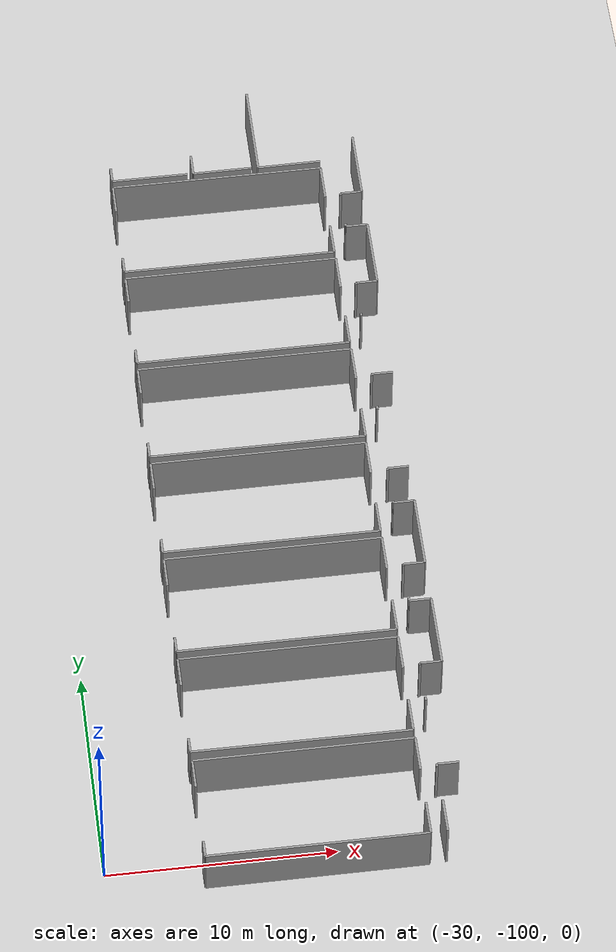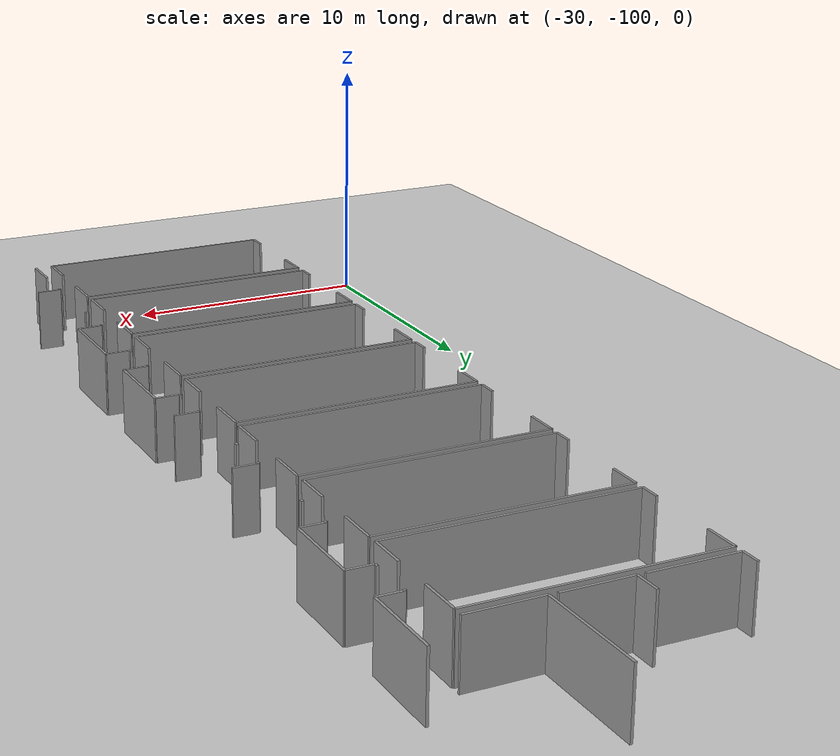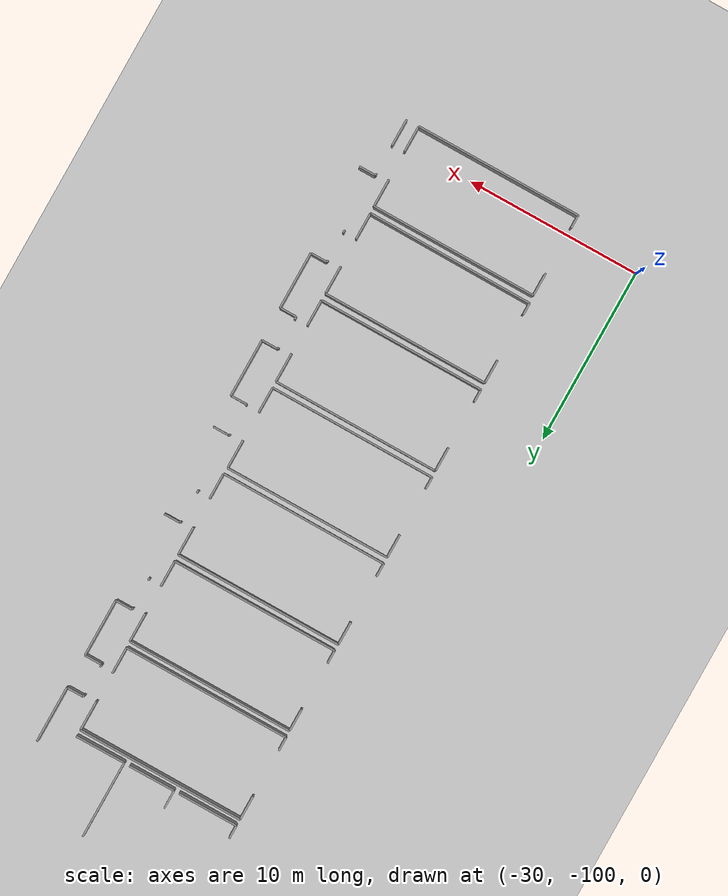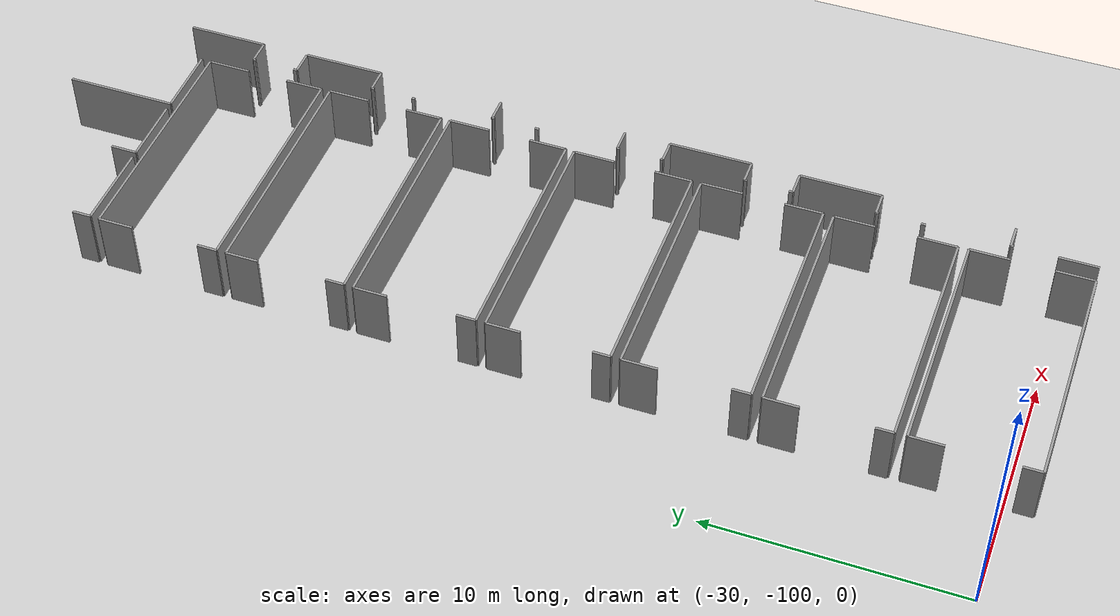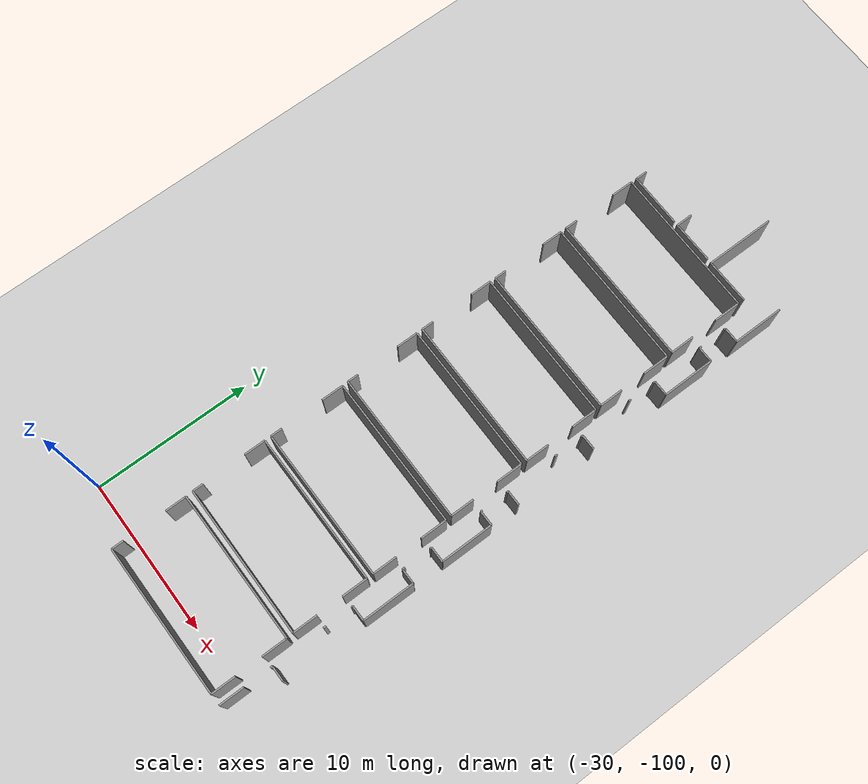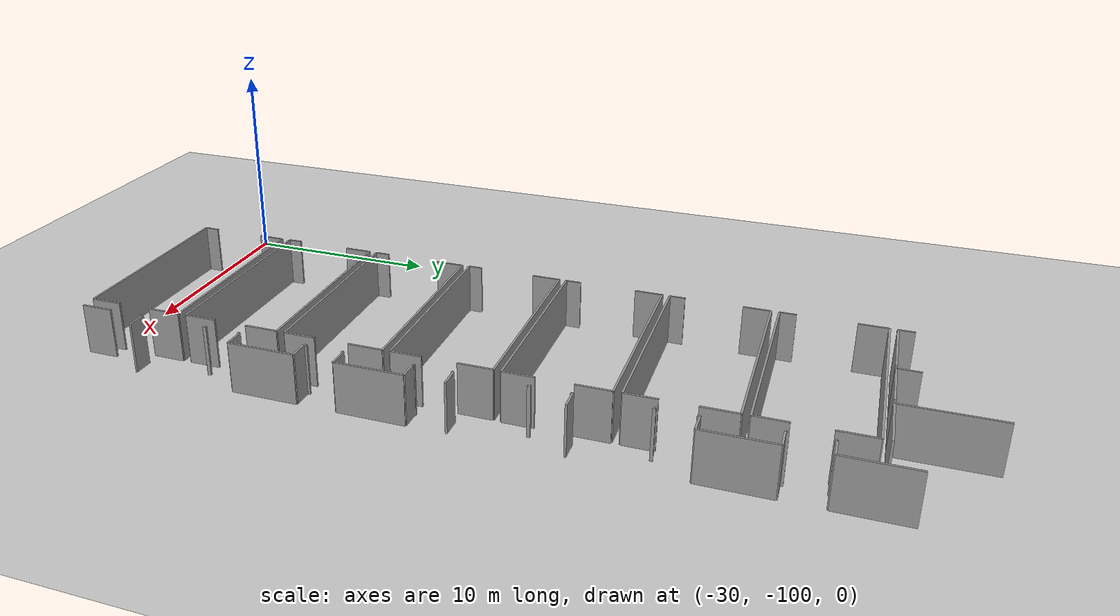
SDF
<sdf version="1.6">
 <world name="default">
  <model name="ground_plane">
   <static>1</static>
   <link name="link">
    <collision name="collision">
     <geometry><plane><normal>0 0 1</normal><size>100 100</size></plane></geometry>
     <surface><friction><ode><mu>100</mu><mu2>50</mu2></ode></friction></surface>
    </collision>
    <visual name="visual">
     <cast_shadows>0</cast_shadows>
     <geometry><plane><normal>0 0 1</normal><size>100 100</size></plane></geometry>
     <material>
      <script><uri>file://media/materials/scripts/gazebo.material</uri><name>Gazebo/Grey</name></script>
     </material>
    </visual>
   </link>
  </model>
  <model name="0510045926_A-40">
   <static>1</static>
   <link name="Wall_1555">
    <collision name="Wall_1555_Collision">
     <geometry><box><size>1.05620530133 0.1 2.5</size></box></geometry>
     <pose>0.528102650667 0 1.25 0 0 0</pose>
    </collision>
    <visual name="Wall_1555_Visual">
     <pose>0.528102650667 0 1.25 0 0 0</pose>
     <geometry><box><size>1.05620530133 0.1 2.5</size></box></geometry>
     <material>
      <script><uri>file://media/materials/scripts/gazebo.material</uri><name>Gazebo/Grey</name></script>
      <ambient>1 1 1 1</ambient>
     </material>
    </visual>
    <pose>111.850415337 -165.554710851 0 0 0 1.57079632679</pose>
   </link>
   <link name="Wall_1559">
    <collision name="Wall_1559_Collision">
     <geometry><box><size>2.68687564854 0.1 2.5</size></box></geometry>
     <pose>1.34343782427 0 1.25 0 0 0</pose>
    </collision>
    <visual name="Wall_1559_Visual">
     <pose>1.34343782427 0 1.25 0 0 0</pose>
     <geometry><box><size>2.68687564854 0.1 2.5</size></box></geometry>
     <material>
      <script><uri>file://media/materials/scripts/gazebo.material</uri><name>Gazebo/Grey</name></script>
      <ambient>1 1 1 1</ambient>
     </material>
    </visual>
    <pose>114.537253384 -165.54049612 0 0 0 -3.13630219752</pose>
   </link>
   <link name="Wall_1560">
    <collision name="Wall_1560_Collision">
     <geometry><box><size>0.752873089102 0.1 2.5</size></box></geometry>
     <pose>0.376436544551 0 1.25 0 0 0</pose>
    </collision>
    <visual name="Wall_1560_Visual">
     <pose>0.376436544551 0 1.25 0 0 0</pose>
     <geometry><box><size>0.752873089102 0.1 2.5</size></box></geometry>
     <material>
      <script><uri>file://media/materials/scripts/gazebo.material</uri><name>Gazebo/Grey</name></script>
      <ambient>1 1 1 1</ambient>
     </material>
    </visual>
    <pose>108.110671836 -165.551157168 0 0 0 1.57079632679</pose>
   </link>
   <link name="Wall_1567">
    <collision name="Wall_1567_Collision">
     <geometry><box><size>3.45671813088 0.1 2.5</size></box></geometry>
     <pose>1.72835906544 0 1.25 0 0 0</pose>
    </collision>
    <visual name="Wall_1567_Visual">
     <pose>1.72835906544 0 1.25 0 0 0</pose>
     <geometry><box><size>3.45671813088 0.1 2.5</size></box></geometry>
     <material>
      <script><uri>file://media/materials/scripts/gazebo.material</uri><name>Gazebo/Grey</name></script>
      <ambient>1 1 1 1</ambient>
     </material>
    </visual>
    <pose>111.567389883 -165.550395665 0 0 0 -3.14137235693</pose>
   </link>
   <link name="Wall_1575">
    <collision name="Wall_1575_Collision">
     <geometry><box><size>4.42382744332 0.1 2.5</size></box></geometry>
     <pose>2.21191372166 0 1.25 0 0 0</pose>
    </collision>
    <visual name="Wall_1575_Visual">
     <pose>2.21191372166 0 1.25 0 0 0</pose>
     <geometry><box><size>4.42382744332 0.1 2.5</size></box></geometry>
     <material>
      <script><uri>file://media/materials/scripts/gazebo.material</uri><name>Gazebo/Grey</name></script>
      <ambient>1 1 1 1</ambient>
     </material>
    </visual>
    <pose>114.8487083 -165.556487692 0 0 0 1.57079632679</pose>
   </link>
   <link name="Wall_1586">
    <collision name="Wall_1586_Collision">
     <geometry><box><size>2.87349520242 0.1 2.5</size></box></geometry>
     <pose>1.43674760121 0 1.25 0 0 0</pose>
    </collision>
    <visual name="Wall_1586_Visual">
     <pose>1.43674760121 0 1.25 0 0 0</pose>
     <geometry><box><size>2.87349520242 0.1 2.5</size></box></geometry>
     <material>
      <script><uri>file://media/materials/scripts/gazebo.material</uri><name>Gazebo/Grey</name></script>
      <ambient>1 1 1 1</ambient>
     </material>
    </visual>
    <pose>117.722114695 -165.533896423 0 0 0 -3.13373062477</pose>
   </link>
   <link name="Wall_1587">
    <collision name="Wall_1587_Collision">
     <geometry><box><size>0.790948262186 0.1 2.5</size></box></geometry>
     <pose>0.395474131093 0 1.25 0 0 0</pose>
    </collision>
    <visual name="Wall_1587_Visual">
     <pose>0.395474131093 0 1.25 0 0 0</pose>
     <geometry><box><size>0.790948262186 0.1 2.5</size></box></geometry>
     <material>
      <script><uri>file://media/materials/scripts/gazebo.material</uri><name>Gazebo/Grey</name></script>
      <ambient>1 1 1 1</ambient>
     </material>
    </visual>
    <pose>108.099756953 -170.854267275 0 0 0 1.57079632679</pose>
   </link>
   <link name="Wall_1588">
    <collision name="Wall_1588_Collision">
     <geometry><box><size>1.39558201075 0.1 2.5</size></box></geometry>
     <pose>0.697791005375 0 1.25 0 0 0</pose>
    </collision>
    <visual name="Wall_1588_Visual">
     <pose>0.697791005375 0 1.25 0 0 0</pose>
     <geometry><box><size>1.39558201075 0.1 2.5</size></box></geometry>
     <material>
      <script><uri>file://media/materials/scripts/gazebo.material</uri><name>Gazebo/Grey</name></script>
      <ambient>1 1 1 1</ambient>
     </material>
    </visual>
    <pose>108.099756953 -167.316322192 0 0 0 1.57079632679</pose>
   </link>
   <link name="Wall_1589">
    <collision name="Wall_1589_Collision">
     <geometry><box><size>9.59088226522 0.1 2.5</size></box></geometry>
     <pose>4.79544113261 0 1.25 0 0 0</pose>
    </collision>
    <visual name="Wall_1589_Visual">
     <pose>4.79544113261 0 1.25 0 0 0</pose>
     <geometry><box><size>9.59088226522 0.1 2.5</size></box></geometry>
     <material>
      <script><uri>file://media/materials/scripts/gazebo.material</uri><name>Gazebo/Grey</name></script>
      <ambient>1 1 1 1</ambient>
     </material>
    </visual>
    <pose>108.099756953 -165.920740181 0 0 0 0.0</pose>
   </link>
   <link name="Wall_1590">
    <collision name="Wall_1590_Collision">
     <geometry><box><size>1.73648172709 0.1 2.5</size></box></geometry>
     <pose>0.868240863545 0 1.25 0 0 0</pose>
    </collision>
    <visual name="Wall_1590_Visual">
     <pose>0.868240863545 0 1.25 0 0 0</pose>
     <geometry><box><size>1.73648172709 0.1 2.5</size></box></geometry>
     <material>
      <script><uri>file://media/materials/scripts/gazebo.material</uri><name>Gazebo/Grey</name></script>
      <ambient>1 1 1 1</ambient>
     </material>
    </visual>
    <pose>117.690639219 -165.920740181 0 0 0 -1.57079632679</pose>
   </link>
   <link name="Wall_1591">
    <collision name="Wall_1591_Collision">
     <geometry><box><size>1.5217377509 0.1 2.5</size></box></geometry>
     <pose>0.76086887545 0 1.25 0 0 0</pose>
    </collision>
    <visual name="Wall_1591_Visual">
     <pose>0.76086887545 0 1.25 0 0 0</pose>
     <geometry><box><size>1.5217377509 0.1 2.5</size></box></geometry>
     <material>
      <script><uri>file://media/materials/scripts/gazebo.material</uri><name>Gazebo/Grey</name></script>
      <ambient>1 1 1 1</ambient>
     </material>
    </visual>
    <pose>117.690639219 -169.341667566 0 0 0 -1.57079632679</pose>
   </link>
   <link name="Wall_1592">
    <collision name="Wall_1592_Collision">
     <geometry><box><size>9.59088661851 0.1 2.5</size></box></geometry>
     <pose>4.79544330925 0 1.25 0 0 0</pose>
    </collision>
    <visual name="Wall_1592_Visual">
     <pose>4.79544330925 0 1.25 0 0 0</pose>
     <geometry><box><size>9.59088661851 0.1 2.5</size></box></geometry>
     <material>
      <script><uri>file://media/materials/scripts/gazebo.material</uri><name>Gazebo/Grey</name></script>
      <ambient>1 1 1 1</ambient>
     </material>
    </visual>
    <pose>117.690639219 -170.863405317 0 0 0 3.14063986963</pose>
   </link>
   <link name="Wall_1593">
    <collision name="Wall_1593_Collision">
     <geometry><box><size>0.750080909743 0.1 2.5</size></box></geometry>
     <pose>0.375040454871 0 1.25 0 0 0</pose>
    </collision>
    <visual name="Wall_1593_Visual">
     <pose>0.375040454871 0 1.25 0 0 0</pose>
     <geometry><box><size>0.750080909743 0.1 2.5</size></box></geometry>
     <material>
      <script><uri>file://media/materials/scripts/gazebo.material</uri><name>Gazebo/Grey</name></script>
      <ambient>1 1 1 1</ambient>
     </material>
    </visual>
    <pose>108.109402664 -176.063204787 0 0 0 1.57079632679</pose>
   </link>
   <link name="Wall_1594">
    <collision name="Wall_1594_Collision">
     <geometry><box><size>1.31486264381 0.1 2.5</size></box></geometry>
     <pose>0.657431321907 0 1.25 0 0 0</pose>
    </collision>
    <visual name="Wall_1594_Visual">
     <pose>0.657431321907 0 1.25 0 0 0</pose>
     <geometry><box><size>1.31486264381 0.1 2.5</size></box></geometry>
     <material>
      <script><uri>file://media/materials/scripts/gazebo.material</uri><name>Gazebo/Grey</name></script>
      <ambient>1 1 1 1</ambient>
     </material>
    </visual>
    <pose>108.109402664 -172.551404657 0 0 0 1.57079632679</pose>
   </link>
   <link name="Wall_1595">
    <collision name="Wall_1595_Collision">
     <geometry><box><size>9.59976647227 0.1 2.5</size></box></geometry>
     <pose>4.79988323614 0 1.25 0 0 0</pose>
    </collision>
    <visual name="Wall_1595_Visual">
     <pose>4.79988323614 0 1.25 0 0 0</pose>
     <geometry><box><size>9.59976647227 0.1 2.5</size></box></geometry>
     <material>
      <script><uri>file://media/materials/scripts/gazebo.material</uri><name>Gazebo/Grey</name></script>
      <ambient>1 1 1 1</ambient>
     </material>
    </visual>
    <pose>108.109402664 -171.236542013 0 0 0 0.0</pose>
   </link>
   <link name="Wall_1596">
    <collision name="Wall_1596_Collision">
     <geometry><box><size>1.67708445708 0.1 2.5</size></box></geometry>
     <pose>0.83854222854 0 1.25 0 0 0</pose>
    </collision>
    <visual name="Wall_1596_Visual">
     <pose>0.83854222854 0 1.25 0 0 0</pose>
     <geometry><box><size>1.67708445708 0.1 2.5</size></box></geometry>
     <material>
      <script><uri>file://media/materials/scripts/gazebo.material</uri><name>Gazebo/Grey</name></script>
      <ambient>1 1 1 1</ambient>
     </material>
    </visual>
    <pose>117.709169136 -171.236542013 0 0 0 -1.57079632679</pose>
   </link>
   <link name="Wall_1597">
    <collision name="Wall_1597_Collision">
     <geometry><box><size>1.50320783333 0.1 2.5</size></box></geometry>
     <pose>0.751603916666 0 1.25 0 0 0</pose>
    </collision>
    <visual name="Wall_1597_Visual">
     <pose>0.751603916666 0 1.25 0 0 0</pose>
     <geometry><box><size>1.50320783333 0.1 2.5</size></box></geometry>
     <material>
      <script><uri>file://media/materials/scripts/gazebo.material</uri><name>Gazebo/Grey</name></script>
      <ambient>1 1 1 1</ambient>
     </material>
    </visual>
    <pose>117.709169136 -174.549335906 0 0 0 -1.57079632679</pose>
   </link>
   <link name="Wall_1598">
    <collision name="Wall_1598_Collision">
     <geometry><box><size>9.5997723921 0.1 2.5</size></box></geometry>
     <pose>4.79988619605 0 1.25 0 0 0</pose>
    </collision>
    <visual name="Wall_1598_Visual">
     <pose>4.79988619605 0 1.25 0 0 0</pose>
     <geometry><box><size>9.5997723921 0.1 2.5</size></box></geometry>
     <material>
      <script><uri>file://media/materials/scripts/gazebo.material</uri><name>Gazebo/Grey</name></script>
      <ambient>1 1 1 1</ambient>
     </material>
    </visual>
    <pose>117.709169136 -176.052543739 0 0 0 -3.14048210115</pose>
   </link>
   <link name="Wall_1599">
    <collision name="Wall_1599_Collision">
     <geometry><box><size>0.764803310002 0.1 2.5</size></box></geometry>
     <pose>0.382401655001 0 1.25 0 0 0</pose>
    </collision>
    <visual name="Wall_1599_Visual">
     <pose>0.382401655001 0 1.25 0 0 0</pose>
     <geometry><box><size>0.764803310002 0.1 2.5</size></box></geometry>
     <material>
      <script><uri>file://media/materials/scripts/gazebo.material</uri><name>Gazebo/Grey</name></script>
      <ambient>1 1 1 1</ambient>
     </material>
    </visual>
    <pose>108.09671094 -181.290926052 0 0 0 1.57079632679</pose>
   </link>
   <link name="Wall_1600">
    <collision name="Wall_1600_Collision">
     <geometry><box><size>1.34278443741 0.1 2.5</size></box></geometry>
     <pose>0.671392218704 0 1.25 0 0 0</pose>
    </collision>
    <visual name="Wall_1600_Visual">
     <pose>0.671392218704 0 1.25 0 0 0</pose>
     <geometry><box><size>1.34278443741 0.1 2.5</size></box></geometry>
     <material>
      <script><uri>file://media/materials/scripts/gazebo.material</uri><name>Gazebo/Grey</name></script>
      <ambient>1 1 1 1</ambient>
     </material>
    </visual>
    <pose>108.09671094 -177.7745569 0 0 0 1.57079632679</pose>
   </link>
   <link name="Wall_1601">
    <collision name="Wall_1601_Collision">
     <geometry><box><size>9.62794210035 0.1 2.5</size></box></geometry>
     <pose>4.81397105018 0 1.25 0 0 0</pose>
    </collision>
    <visual name="Wall_1601_Visual">
     <pose>4.81397105018 0 1.25 0 0 0</pose>
     <geometry><box><size>9.62794210035 0.1 2.5</size></box></geometry>
     <material>
      <script><uri>file://media/materials/scripts/gazebo.material</uri><name>Gazebo/Grey</name></script>
      <ambient>1 1 1 1</ambient>
     </material>
    </visual>
    <pose>108.09671094 -176.431772463 0 0 0 0.0</pose>
   </link>
   <link name="Wall_1602">
    <collision name="Wall_1602_Collision">
     <geometry><box><size>1.65652386361 0.1 2.5</size></box></geometry>
     <pose>0.828261931807 0 1.25 0 0 0</pose>
    </collision>
    <visual name="Wall_1602_Visual">
     <pose>0.828261931807 0 1.25 0 0 0</pose>
     <geometry><box><size>1.65652386361 0.1 2.5</size></box></geometry>
     <material>
      <script><uri>file://media/materials/scripts/gazebo.material</uri><name>Gazebo/Grey</name></script>
      <ambient>1 1 1 1</ambient>
     </material>
    </visual>
    <pose>117.72465304 -176.431772463 0 0 0 -1.57079632679</pose>
   </link>
   <link name="Wall_1603">
    <collision name="Wall_1603_Collision">
     <geometry><box><size>1.50853835756 0.1 2.5</size></box></geometry>
     <pose>0.754269178782 0 1.25 0 0 0</pose>
    </collision>
    <visual name="Wall_1603_Visual">
     <pose>0.754269178782 0 1.25 0 0 0</pose>
     <geometry><box><size>1.50853835756 0.1 2.5</size></box></geometry>
     <material>
      <script><uri>file://media/materials/scripts/gazebo.material</uri><name>Gazebo/Grey</name></script>
      <ambient>1 1 1 1</ambient>
     </material>
    </visual>
    <pose>117.72465304 -179.797110094 0 0 0 -1.57079632679</pose>
   </link>
   <link name="Wall_1604">
    <collision name="Wall_1604_Collision">
     <geometry><box><size>9.6279533566 0.1 2.5</size></box></geometry>
     <pose>4.8139766783 0 1.25 0 0 0</pose>
    </collision>
    <visual name="Wall_1604_Visual">
     <pose>4.8139766783 0 1.25 0 0 0</pose>
     <geometry><box><size>9.6279533566 0.1 2.5</size></box></geometry>
     <material>
      <script><uri>file://media/materials/scripts/gazebo.material</uri><name>Gazebo/Grey</name></script>
      <ambient>1 1 1 1</ambient>
     </material>
    </visual>
    <pose>117.72465304 -181.305648452 0 0 0 3.14006352217</pose>
   </link>
   <link name="Wall_1605">
    <collision name="Wall_1605_Collision">
     <geometry><box><size>0.692968150118 0.1 2.5</size></box></geometry>
     <pose>0.346484075059 0 1.25 0 0 0</pose>
    </collision>
    <visual name="Wall_1605_Visual">
     <pose>0.346484075059 0 1.25 0 0 0</pose>
     <geometry><box><size>0.692968150118 0.1 2.5</size></box></geometry>
     <material>
      <script><uri>file://media/materials/scripts/gazebo.material</uri><name>Gazebo/Grey</name></script>
      <ambient>1 1 1 1</ambient>
     </material>
    </visual>
    <pose>108.097980112 -186.483364322 0 0 0 1.57079632679</pose>
   </link>
   <link name="Wall_1606">
    <collision name="Wall_1606_Collision">
     <geometry><box><size>1.36562954126 0.1 2.5</size></box></geometry>
     <pose>0.682814770629 0 1.25 0 0 0</pose>
    </collision>
    <visual name="Wall_1606_Visual">
     <pose>0.682814770629 0 1.25 0 0 0</pose>
     <geometry><box><size>1.36562954126 0.1 2.5</size></box></geometry>
     <material>
      <script><uri>file://media/materials/scripts/gazebo.material</uri><name>Gazebo/Grey</name></script>
      <ambient>1 1 1 1</ambient>
     </material>
    </visual>
    <pose>108.097980112 -183.027915448 0 0 0 1.57079632679</pose>
   </link>
   <link name="Wall_1607">
    <collision name="Wall_1607_Collision">
     <geometry><box><size>9.59367444458 0.1 2.5</size></box></geometry>
     <pose>4.79683722229 0 1.25 0 0 0</pose>
    </collision>
    <visual name="Wall_1607_Visual">
     <pose>4.79683722229 0 1.25 0 0 0</pose>
     <geometry><box><size>9.59367444458 0.1 2.5</size></box></geometry>
     <material>
      <script><uri>file://media/materials/scripts/gazebo.material</uri><name>Gazebo/Grey</name></script>
      <ambient>1 1 1 1</ambient>
     </material>
    </visual>
    <pose>108.097980112 -181.662285906 0 0 0 0.0</pose>
   </link>
   <link name="Wall_1608">
    <collision name="Wall_1608_Collision">
     <geometry><box><size>1.66464656721 0.1 2.5</size></box></geometry>
     <pose>0.832323283603 0 1.25 0 0 0</pose>
    </collision>
    <visual name="Wall_1608_Visual">
     <pose>0.832323283603 0 1.25 0 0 0</pose>
     <geometry><box><size>1.66464656721 0.1 2.5</size></box></geometry>
     <material>
      <script><uri>file://media/materials/scripts/gazebo.material</uri><name>Gazebo/Grey</name></script>
      <ambient>1 1 1 1</ambient>
     </material>
    </visual>
    <pose>117.691654557 -181.662285906 0 0 0 -1.57079632679</pose>
   </link>
   <link name="Wall_1609">
    <collision name="Wall_1609_Collision">
     <geometry><box><size>1.50270016436 0.1 2.5</size></box></geometry>
     <pose>0.751350082179 0 1.25 0 0 0</pose>
    </collision>
    <visual name="Wall_1609_Visual">
     <pose>0.751350082179 0 1.25 0 0 0</pose>
     <geometry><box><size>1.50270016436 0.1 2.5</size></box></geometry>
     <material>
      <script><uri>file://media/materials/scripts/gazebo.material</uri><name>Gazebo/Grey</name></script>
      <ambient>1 1 1 1</ambient>
     </material>
    </visual>
    <pose>117.691654557 -184.98701002 0 0 0 -1.57079632679</pose>
   </link>
   <link name="Wall_1610">
    <collision name="Wall_1610_Collision">
     <geometry><box><size>9.59367654336 0.1 2.5</size></box></geometry>
     <pose>4.79683827168 0 1.25 0 0 0</pose>
    </collision>
    <visual name="Wall_1610_Visual">
     <pose>4.79683827168 0 1.25 0 0 0</pose>
     <geometry><box><size>9.59367654336 0.1 2.5</size></box></geometry>
     <material>
      <script><uri>file://media/materials/scripts/gazebo.material</uri><name>Gazebo/Grey</name></script>
      <ambient>1 1 1 1</ambient>
     </material>
    </visual>
    <pose>117.691654557 -186.489710184 0 0 0 3.14093119053</pose>
   </link>
   <link name="Wall_1611">
    <collision name="Wall_1611_Collision">
     <geometry><box><size>0.731297157688 0.1 2.5</size></box></geometry>
     <pose>0.365648578844 0 1.25 0 0 0</pose>
    </collision>
    <visual name="Wall_1611_Visual">
     <pose>0.365648578844 0 1.25 0 0 0</pose>
     <geometry><box><size>0.731297157688 0.1 2.5</size></box></geometry>
     <material>
      <script><uri>file://media/materials/scripts/gazebo.material</uri><name>Gazebo/Grey</name></script>
      <ambient>1 1 1 1</ambient>
     </material>
    </visual>
    <pose>108.110671836 -191.740022718 0 0 0 1.57079632679</pose>
   </link>
   <link name="Wall_1612">
    <collision name="Wall_1612_Collision">
     <geometry><box><size>1.39583584524 0.1 2.5</size></box></geometry>
     <pose>0.697917922619 0 1.25 0 0 0</pose>
    </collision>
    <visual name="Wall_1612_Visual">
     <pose>0.697917922619 0 1.25 0 0 0</pose>
     <geometry><box><size>1.39583584524 0.1 2.5</size></box></geometry>
     <material>
      <script><uri>file://media/materials/scripts/gazebo.material</uri><name>Gazebo/Grey</name></script>
      <ambient>1 1 1 1</ambient>
     </material>
    </visual>
    <pose>108.110671836 -188.252590698 0 0 0 1.57079632679</pose>
   </link>
   <link name="Wall_1613">
    <collision name="Wall_1613_Collision">
     <geometry><box><size>9.59138993419 0.1 2.5</size></box></geometry>
     <pose>4.7956949671 0 1.25 0 0 0</pose>
    </collision>
    <visual name="Wall_1613_Visual">
     <pose>4.7956949671 0 1.25 0 0 0</pose>
     <geometry><box><size>9.59138993419 0.1 2.5</size></box></geometry>
     <material>
      <script><uri>file://media/materials/scripts/gazebo.material</uri><name>Gazebo/Grey</name></script>
      <ambient>1 1 1 1</ambient>
     </material>
    </visual>
    <pose>108.110671836 -186.856754853 0 0 0 0.0</pose>
   </link>
   <link name="Wall_1614">
    <collision name="Wall_1614_Collision">
     <geometry><box><size>1.67708445708 0.1 2.5</size></box></geometry>
     <pose>0.83854222854 0 1.25 0 0 0</pose>
    </collision>
    <visual name="Wall_1614_Visual">
     <pose>0.83854222854 0 1.25 0 0 0</pose>
     <geometry><box><size>1.67708445708 0.1 2.5</size></box></geometry>
     <material>
      <script><uri>file://media/materials/scripts/gazebo.material</uri><name>Gazebo/Grey</name></script>
      <ambient>1 1 1 1</ambient>
     </material>
    </visual>
    <pose>117.702061771 -186.856754853 0 0 0 -1.57079632679</pose>
   </link>
   <link name="Wall_1615">
    <collision name="Wall_1615_Collision">
     <geometry><box><size>1.53062195795 0.1 2.5</size></box></geometry>
     <pose>0.765310978976 0 1.25 0 0 0</pose>
    </collision>
    <visual name="Wall_1615_Visual">
     <pose>0.765310978976 0 1.25 0 0 0</pose>
     <geometry><box><size>1.53062195795 0.1 2.5</size></box></geometry>
     <material>
      <script><uri>file://media/materials/scripts/gazebo.material</uri><name>Gazebo/Grey</name></script>
      <ambient>1 1 1 1</ambient>
     </material>
    </visual>
    <pose>117.702061771 -190.20940076 0 0 0 -1.57079632679</pose>
   </link>
   <link name="Wall_1616">
    <collision name="Wall_1616_Collision">
     <geometry><box><size>9.59138993419 0.1 2.5</size></box></geometry>
     <pose>4.7956949671 0 1.25 0 0 0</pose>
    </collision>
    <visual name="Wall_1616_Visual">
     <pose>4.7956949671 0 1.25 0 0 0</pose>
     <geometry><box><size>9.59138993419 0.1 2.5</size></box></geometry>
     <material>
      <script><uri>file://media/materials/scripts/gazebo.material</uri><name>Gazebo/Grey</name></script>
      <ambient>1 1 1 1</ambient>
     </material>
    </visual>
    <pose>117.702061771 -191.740022718 0 0 0 3.14159265359</pose>
   </link>
   <link name="Wall_1617">
    <collision name="Wall_1617_Collision">
     <geometry><box><size>0.692968150118 0.1 2.5</size></box></geometry>
     <pose>0.346484075059 0 1.25 0 0 0</pose>
    </collision>
    <visual name="Wall_1617_Visual">
     <pose>0.346484075059 0 1.25 0 0 0</pose>
     <geometry><box><size>0.692968150118 0.1 2.5</size></box></geometry>
     <material>
      <script><uri>file://media/materials/scripts/gazebo.material</uri><name>Gazebo/Grey</name></script>
      <ambient>1 1 1 1</ambient>
     </material>
    </visual>
    <pose>108.110671836 -196.928653472 0 0 0 1.57079632679</pose>
   </link>
   <link name="Wall_1618">
    <collision name="Wall_1618_Collision">
     <geometry><box><size>1.35344548587 0.1 2.5</size></box></geometry>
     <pose>0.676722742935 0 1.25 0 0 0</pose>
    </collision>
    <visual name="Wall_1618_Visual">
     <pose>0.676722742935 0 1.25 0 0 0</pose>
     <geometry><box><size>1.35344548587 0.1 2.5</size></box></geometry>
     <material>
      <script><uri>file://media/materials/scripts/gazebo.material</uri><name>Gazebo/Grey</name></script>
      <ambient>1 1 1 1</ambient>
     </material>
    </visual>
    <pose>108.110671836 -193.498080377 0 0 0 1.57079632679</pose>
   </link>
   <link name="Wall_1619">
    <collision name="Wall_1619_Collision">
     <geometry><box><size>9.58275956163 0.1 2.5</size></box></geometry>
     <pose>4.79137978081 0 1.25 0 0 0</pose>
    </collision>
    <visual name="Wall_1619_Visual">
     <pose>4.79137978081 0 1.25 0 0 0</pose>
     <geometry><box><size>9.58275956163 0.1 2.5</size></box></geometry>
     <material>
      <script><uri>file://media/materials/scripts/gazebo.material</uri><name>Gazebo/Grey</name></script>
      <ambient>1 1 1 1</ambient>
     </material>
    </visual>
    <pose>108.110671836 -192.144634891 0 0 0 0.0</pose>
   </link>
   <link name="Wall_1620">
    <collision name="Wall_1620_Collision">
     <geometry><box><size>1.62454071822 0.1 2.5</size></box></geometry>
     <pose>0.812270359112 0 1.25 0 0 0</pose>
    </collision>
    <visual name="Wall_1620_Visual">
     <pose>0.812270359112 0 1.25 0 0 0</pose>
     <geometry><box><size>1.62454071822 0.1 2.5</size></box></geometry>
     <material>
      <script><uri>file://media/materials/scripts/gazebo.material</uri><name>Gazebo/Grey</name></script>
      <ambient>1 1 1 1</ambient>
     </material>
    </visual>
    <pose>117.693431398 -192.144634891 0 0 0 -1.57079632679</pose>
   </link>
   <link name="Wall_1621">
    <collision name="Wall_1621_Collision">
     <geometry><box><size>1.5575284136 0.1 2.5</size></box></geometry>
     <pose>0.778764206799 0 1.25 0 0 0</pose>
    </collision>
    <visual name="Wall_1621_Visual">
     <pose>0.778764206799 0 1.25 0 0 0</pose>
     <geometry><box><size>1.5575284136 0.1 2.5</size></box></geometry>
     <material>
      <script><uri>file://media/materials/scripts/gazebo.material</uri><name>Gazebo/Grey</name></script>
      <ambient>1 1 1 1</ambient>
     </material>
    </visual>
    <pose>117.693431398 -195.409200231 0 0 0 -1.57079632679</pose>
   </link>
   <link name="Wall_1622">
    <collision name="Wall_1622_Collision">
     <geometry><box><size>9.58283520336 0.1 2.5</size></box></geometry>
     <pose>4.79141760168 0 1.25 0 0 0</pose>
    </collision>
    <visual name="Wall_1622_Visual">
     <pose>4.79141760168 0 1.25 0 0 0</pose>
     <geometry><box><size>9.58283520336 0.1 2.5</size></box></geometry>
     <material>
      <script><uri>file://media/materials/scripts/gazebo.material</uri><name>Gazebo/Grey</name></script>
      <ambient>1 1 1 1</ambient>
     </material>
    </visual>
    <pose>117.693431398 -196.966728645 0 0 0 3.13761937507</pose>
   </link>
   <link name="Wall_1623">
    <collision name="Wall_1623_Collision">
     <geometry><box><size>0.758457447821 0.1 2.5</size></box></geometry>
     <pose>0.379228723911 0 1.25 0 0 0</pose>
    </collision>
    <visual name="Wall_1623_Visual">
     <pose>0.379228723911 0 1.25 0 0 0</pose>
     <geometry><box><size>0.758457447821 0.1 2.5</size></box></geometry>
     <material>
      <script><uri>file://media/materials/scripts/gazebo.material</uri><name>Gazebo/Grey</name></script>
      <ambient>1 1 1 1</ambient>
     </material>
    </visual>
    <pose>108.143416485 -202.188104047 0 0 0 1.57079632679</pose>
   </link>
   <link name="Wall_1624">
    <collision name="Wall_1624_Collision">
     <geometry><box><size>1.33390023035 0.1 2.5</size></box></geometry>
     <pose>0.666950115177 0 1.25 0 0 0</pose>
    </collision>
    <visual name="Wall_1624_Visual">
     <pose>0.666950115177 0 1.25 0 0 0</pose>
     <geometry><box><size>1.33390023035 0.1 2.5</size></box></geometry>
     <material>
      <script><uri>file://media/materials/scripts/gazebo.material</uri><name>Gazebo/Grey</name></script>
      <ambient>1 1 1 1</ambient>
     </material>
    </visual>
    <pose>108.143416485 -198.712602248 0 0 0 1.57079632679</pose>
   </link>
   <link name="Wall_1625">
    <collision name="Wall_1625_Collision">
     <geometry><box><size>9.57514452701 0.1 2.5</size></box></geometry>
     <pose>4.78757226351 0 1.25 0 0 0</pose>
    </collision>
    <visual name="Wall_1625_Visual">
     <pose>4.78757226351 0 1.25 0 0 0</pose>
     <geometry><box><size>9.57514452701 0.1 2.5</size></box></geometry>
     <material>
      <script><uri>file://media/materials/scripts/gazebo.material</uri><name>Gazebo/Grey</name></script>
      <ambient>1 1 1 1</ambient>
     </material>
    </visual>
    <pose>108.143416485 -197.378702017 0 0 0 0.0</pose>
   </link>
   <link name="Wall_1626">
    <collision name="Wall_1626_Collision">
     <geometry><box><size>1.59763426258 0.1 2.5</size></box></geometry>
     <pose>0.79881713129 0 1.25 0 0 0</pose>
    </collision>
    <visual name="Wall_1626_Visual">
     <pose>0.79881713129 0 1.25 0 0 0</pose>
     <geometry><box><size>1.59763426258 0.1 2.5</size></box></geometry>
     <material>
      <script><uri>file://media/materials/scripts/gazebo.material</uri><name>Gazebo/Grey</name></script>
      <ambient>1 1 1 1</ambient>
     </material>
    </visual>
    <pose>117.718561012 -197.378702017 0 0 0 -1.57079632679</pose>
   </link>
   <link name="Wall_1627">
    <collision name="Wall_1627_Collision">
     <geometry><box><size>1.51919940603 0.1 2.5</size></box></geometry>
     <pose>0.759599703014 0 1.25 0 0 0</pose>
    </collision>
    <visual name="Wall_1627_Visual">
     <pose>0.759599703014 0 1.25 0 0 0</pose>
     <geometry><box><size>1.51919940603 0.1 2.5</size></box></geometry>
     <material>
      <script><uri>file://media/materials/scripts/gazebo.material</uri><name>Gazebo/Grey</name></script>
      <ambient>1 1 1 1</ambient>
     </material>
    </visual>
    <pose>117.718561012 -200.656466751 0 0 0 -1.57079632679</pose>
   </link>
   <link name="Wall_1628">
    <collision name="Wall_1628_Collision">
     <geometry><box><size>9.57515260527 0.1 2.5</size></box></geometry>
     <pose>4.78757630264 0 1.25 0 0 0</pose>
    </collision>
    <visual name="Wall_1628_Visual">
     <pose>4.78757630264 0 1.25 0 0 0</pose>
     <geometry><box><size>9.57515260527 0.1 2.5</size></box></geometry>
     <material>
      <script><uri>file://media/materials/scripts/gazebo.material</uri><name>Gazebo/Grey</name></script>
      <ambient>1 1 1 1</ambient>
     </material>
    </visual>
    <pose>117.718561012 -202.175666157 0 0 0 -3.1402936776</pose>
   </link>
   <link name="Wall_1677">
    <collision name="Wall_1677_Collision">
     <geometry><box><size>1.55499006873 0.1 2.5</size></box></geometry>
     <pose>0.777495034363 0 1.25 0 0 0</pose>
    </collision>
    <visual name="Wall_1677_Visual">
     <pose>0.777495034363 0 1.25 0 0 0</pose>
     <geometry><box><size>1.55499006873 0.1 2.5</size></box></geometry>
     <material>
      <script><uri>file://media/materials/scripts/gazebo.material</uri><name>Gazebo/Grey</name></script>
      <ambient>1 1 1 1</ambient>
     </material>
    </visual>
    <pose>118.443258473 -202.172366309 0 0 0 1.57079632679</pose>
   </link>
   <link name="Wall_1678">
    <collision name="Wall_1678_Collision">
     <geometry><box><size>0.114987022712 0.1 2.5</size></box></geometry>
     <pose>0.0574935113559 0 1.25 0 0 0</pose>
    </collision>
    <visual name="Wall_1678_Visual">
     <pose>0.0574935113559 0 1.25 0 0 0</pose>
     <geometry><box><size>0.114987022712 0.1 2.5</size></box></geometry>
     <material>
      <script><uri>file://media/materials/scripts/gazebo.material</uri><name>Gazebo/Grey</name></script>
      <ambient>1 1 1 1</ambient>
     </material>
    </visual>
    <pose>118.443258473 -198.932169079 0 0 0 1.57079632679</pose>
   </link>
   <link name="Wall_1679">
    <collision name="Wall_1679_Collision">
     <geometry><box><size>0.958479023753 0.1 2.5</size></box></geometry>
     <pose>0.479239511876 0 1.25 0 0 0</pose>
    </collision>
    <visual name="Wall_1679_Visual">
     <pose>0.479239511876 0 1.25 0 0 0</pose>
     <geometry><box><size>0.958479023753 0.1 2.5</size></box></geometry>
     <material>
      <script><uri>file://media/materials/scripts/gazebo.material</uri><name>Gazebo/Grey</name></script>
      <ambient>1 1 1 1</ambient>
     </material>
    </visual>
    <pose>118.443258473 -198.817182056 0 0 0 0.0</pose>
   </link>
   <link name="Wall_1682">
    <collision name="Wall_1682_Collision">
     <geometry><box><size>0.177684141056 0.1 2.5</size></box></geometry>
     <pose>0.0888420705279 0 1.25 0 0 0</pose>
    </collision>
    <visual name="Wall_1682_Visual">
     <pose>0.0888420705279 0 1.25 0 0 0</pose>
     <geometry><box><size>0.177684141056 0.1 2.5</size></box></geometry>
     <material>
      <script><uri>file://media/materials/scripts/gazebo.material</uri><name>Gazebo/Grey</name></script>
      <ambient>1 1 1 1</ambient>
     </material>
    </visual>
    <pose>118.441989301 -195.541701833 0 0 0 1.57079632679</pose>
   </link>
   <link name="Wall_1683">
    <collision name="Wall_1683_Collision">
     <geometry><box><size>0.107118153608 0.1 2.5</size></box></geometry>
     <pose>0.053559076804 0 1.25 0 0 0</pose>
    </collision>
    <visual name="Wall_1683_Visual">
     <pose>0.053559076804 0 1.25 0 0 0</pose>
     <geometry><box><size>0.107118153608 0.1 2.5</size></box></geometry>
     <material>
      <script><uri>file://media/materials/scripts/gazebo.material</uri><name>Gazebo/Grey</name></script>
      <ambient>1 1 1 1</ambient>
     </material>
    </visual>
    <pose>118.441989301 -193.723231567 0 0 0 1.57079632679</pose>
   </link>
   <link name="Wall_1684">
    <collision name="Wall_1684_Collision">
     <geometry><box><size>0.957209851316 0.1 2.5</size></box></geometry>
     <pose>0.478604925658 0 1.25 0 0 0</pose>
    </collision>
    <visual name="Wall_1684_Visual">
     <pose>0.478604925658 0 1.25 0 0 0</pose>
     <geometry><box><size>0.957209851316 0.1 2.5</size></box></geometry>
     <material>
      <script><uri>file://media/materials/scripts/gazebo.material</uri><name>Gazebo/Grey</name></script>
      <ambient>1 1 1 1</ambient>
     </material>
    </visual>
    <pose>118.441989301 -193.616113413 0 0 0 0.0</pose>
   </link>
   <link name="Wall_1685">
    <collision name="Wall_1685_Collision">
     <geometry><box><size>3.28436443017 0.1 2.5</size></box></geometry>
     <pose>1.64218221509 0 1.25 0 0 0</pose>
    </collision>
    <visual name="Wall_1685_Visual">
     <pose>1.64218221509 0 1.25 0 0 0</pose>
     <geometry><box><size>3.28436443017 0.1 2.5</size></box></geometry>
     <material>
      <script><uri>file://media/materials/scripts/gazebo.material</uri><name>Gazebo/Grey</name></script>
      <ambient>1 1 1 1</ambient>
     </material>
    </visual>
    <pose>119.399199152 -193.616113413 0 0 0 1.57079632679</pose>
   </link>
   <link name="Wall_1686">
    <collision name="Wall_1686_Collision">
     <geometry><box><size>0.960002030676 0.1 2.5</size></box></geometry>
     <pose>0.480001015338 0 1.25 0 0 0</pose>
    </collision>
    <visual name="Wall_1686_Visual">
     <pose>0.480001015338 0 1.25 0 0 0</pose>
     <geometry><box><size>0.960002030676 0.1 2.5</size></box></geometry>
     <material>
      <script><uri>file://media/materials/scripts/gazebo.material</uri><name>Gazebo/Grey</name></script>
      <ambient>1 1 1 1</ambient>
     </material>
    </visual>
    <pose>119.399199152 -190.331748983 0 0 0 3.14159265359</pose>
   </link>
   <link name="Wall_1687">
    <collision name="Wall_1687_Collision">
     <geometry><box><size>0.164992416695 0.1 2.5</size></box></geometry>
     <pose>0.0824962083474 0 1.25 0 0 0</pose>
    </collision>
    <visual name="Wall_1687_Visual">
     <pose>0.0824962083474 0 1.25 0 0 0</pose>
     <geometry><box><size>0.164992416695 0.1 2.5</size></box></geometry>
     <material>
      <script><uri>file://media/materials/scripts/gazebo.material</uri><name>Gazebo/Grey</name></script>
      <ambient>1 1 1 1</ambient>
     </material>
    </visual>
    <pose>118.439197122 -190.331748983 0 0 0 1.57079632679</pose>
   </link>
   <link name="Wall_1688">
    <collision name="Wall_1688_Collision">
     <geometry><box><size>0.103056801812 0.1 2.5</size></box></geometry>
     <pose>0.0515284009062 0 1.25 0 0 0</pose>
    </collision>
    <visual name="Wall_1688_Visual">
     <pose>0.0515284009062 0 1.25 0 0 0</pose>
     <geometry><box><size>0.103056801812 0.1 2.5</size></box></geometry>
     <material>
      <script><uri>file://media/materials/scripts/gazebo.material</uri><name>Gazebo/Grey</name></script>
      <ambient>1 1 1 1</ambient>
     </material>
    </visual>
    <pose>118.439197122 -188.487133764 0 0 0 1.57079632679</pose>
   </link>
   <link name="Wall_1689">
    <collision name="Wall_1689_Collision">
     <geometry><box><size>0.957717520291 0.1 2.5</size></box></geometry>
     <pose>0.478858760145 0 1.25 0 0 0</pose>
    </collision>
    <visual name="Wall_1689_Visual">
     <pose>0.478858760145 0 1.25 0 0 0</pose>
     <geometry><box><size>0.957717520291 0.1 2.5</size></box></geometry>
     <material>
      <script><uri>file://media/materials/scripts/gazebo.material</uri><name>Gazebo/Grey</name></script>
      <ambient>1 1 1 1</ambient>
     </material>
    </visual>
    <pose>118.439197122 -188.384076963 0 0 0 0.0</pose>
   </link>
   <link name="Wall_1690">
    <collision name="Wall_1690_Collision">
     <geometry><box><size>3.32218576877 0.1 2.5</size></box></geometry>
     <pose>1.66109288438 0 1.25 0 0 0</pose>
    </collision>
    <visual name="Wall_1690_Visual">
     <pose>1.66109288438 0 1.25 0 0 0</pose>
     <geometry><box><size>3.32218576877 0.1 2.5</size></box></geometry>
     <material>
      <script><uri>file://media/materials/scripts/gazebo.material</uri><name>Gazebo/Grey</name></script>
      <ambient>1 1 1 1</ambient>
     </material>
    </visual>
    <pose>119.396914642 -188.384076963 0 0 0 1.57079632679</pose>
   </link>
   <link name="Wall_1691">
    <collision name="Wall_1691_Collision">
     <geometry><box><size>0.936141588877 0.1 2.5</size></box></geometry>
     <pose>0.468070794438 0 1.25 0 0 0</pose>
    </collision>
    <visual name="Wall_1691_Visual">
     <pose>0.468070794438 0 1.25 0 0 0</pose>
     <geometry><box><size>0.936141588877 0.1 2.5</size></box></geometry>
     <material>
      <script><uri>file://media/materials/scripts/gazebo.material</uri><name>Gazebo/Grey</name></script>
      <ambient>1 1 1 1</ambient>
     </material>
    </visual>
    <pose>119.396914642 -185.061891194 0 0 0 3.14159265359</pose>
   </link>
   <link name="Wall_1692">
    <collision name="Wall_1692_Collision">
     <geometry><box><size>0.0982339465552 0.1 2.5</size></box></geometry>
     <pose>0.0491169732776 0 1.25 0 0 0</pose>
    </collision>
    <visual name="Wall_1692_Visual">
     <pose>0.0491169732776 0 1.25 0 0 0</pose>
     <geometry><box><size>0.0982339465552 0.1 2.5</size></box></geometry>
     <material>
      <script><uri>file://media/materials/scripts/gazebo.material</uri><name>Gazebo/Grey</name></script>
      <ambient>1 1 1 1</ambient>
     </material>
    </visual>
    <pose>118.460773053 -185.061891194 0 0 0 1.57079632679</pose>
   </link>
   <link name="Wall_1693">
    <collision name="Wall_1693_Collision">
     <geometry><box><size>0.0967109396318 0.1 2.5</size></box></geometry>
     <pose>0.0483554698159 0 1.25 0 0 0</pose>
    </collision>
    <visual name="Wall_1693_Visual">
     <pose>0.0483554698159 0 1.25 0 0 0</pose>
     <geometry><box><size>0.0967109396318 0.1 2.5</size></box></geometry>
     <material>
      <script><uri>file://media/materials/scripts/gazebo.material</uri><name>Gazebo/Grey</name></script>
      <ambient>1 1 1 1</ambient>
     </material>
    </visual>
    <pose>118.460773053 -183.283780611 0 0 0 1.57079632679</pose>
   </link>
   <link name="Wall_1694">
    <collision name="Wall_1694_Collision">
     <geometry><box><size>0.944264292468 0.1 2.5</size></box></geometry>
     <pose>0.472132146234 0 1.25 0 0 0</pose>
    </collision>
    <visual name="Wall_1694_Visual">
     <pose>0.472132146234 0 1.25 0 0 0</pose>
     <geometry><box><size>0.944264292468 0.1 2.5</size></box></geometry>
     <material>
      <script><uri>file://media/materials/scripts/gazebo.material</uri><name>Gazebo/Grey</name></script>
      <ambient>1 1 1 1</ambient>
     </material>
    </visual>
    <pose>118.460773053 -183.187069671 0 0 0 0.0</pose>
   </link>
   <link name="Wall_1697">
    <collision name="Wall_1697_Collision">
     <geometry><box><size>0.167784596054 0.1 2.5</size></box></geometry>
     <pose>0.0838922980271 0 1.25 0 0 0</pose>
    </collision>
    <visual name="Wall_1697_Visual">
     <pose>0.0838922980271 0 1.25 0 0 0</pose>
     <geometry><box><size>0.167784596054 0.1 2.5</size></box></geometry>
     <material>
      <script><uri>file://media/materials/scripts/gazebo.material</uri><name>Gazebo/Grey</name></script>
      <ambient>1 1 1 1</ambient>
     </material>
    </visual>
    <pose>118.44757366 -179.910827945 0 0 0 1.57079632679</pose>
   </link>
   <link name="Wall_1698">
    <collision name="Wall_1698_Collision">
     <geometry><box><size>0.0934110912979 0.1 2.5</size></box></geometry>
     <pose>0.046705545649 0 1.25 0 0 0</pose>
    </collision>
    <visual name="Wall_1698_Visual">
     <pose>0.046705545649 0 1.25 0 0 0</pose>
     <geometry><box><size>0.0934110912979 0.1 2.5</size></box></geometry>
     <material>
      <script><uri>file://media/materials/scripts/gazebo.material</uri><name>Gazebo/Grey</name></script>
      <ambient>1 1 1 1</ambient>
     </material>
    </visual>
    <pose>118.44757366 -178.042606119 0 0 0 1.57079632679</pose>
   </link>
   <link name="Wall_1699">
    <collision name="Wall_1699_Collision">
     <geometry><box><size>0.958225189265 0.1 2.5</size></box></geometry>
     <pose>0.479112594633 0 1.25 0 0 0</pose>
    </collision>
    <visual name="Wall_1699_Visual">
     <pose>0.479112594633 0 1.25 0 0 0</pose>
     <geometry><box><size>0.958225189265 0.1 2.5</size></box></geometry>
     <material>
      <script><uri>file://media/materials/scripts/gazebo.material</uri><name>Gazebo/Grey</name></script>
      <ambient>1 1 1 1</ambient>
     </material>
    </visual>
    <pose>118.44757366 -177.949195027 0 0 0 0.0</pose>
   </link>
   <link name="Wall_1702">
    <collision name="Wall_1702_Collision">
     <geometry><box><size>0.142401147332 0.1 2.5</size></box></geometry>
     <pose>0.0712005736659 0 1.25 0 0 0</pose>
    </collision>
    <visual name="Wall_1702_Visual">
     <pose>0.0712005736659 0 1.25 0 0 0</pose>
     <geometry><box><size>0.142401147332 0.1 2.5</size></box></geometry>
     <material>
      <script><uri>file://media/materials/scripts/gazebo.material</uri><name>Gazebo/Grey</name></script>
      <ambient>1 1 1 1</ambient>
     </material>
    </visual>
    <pose>118.433105094 -174.639954817 0 0 0 1.57079632679</pose>
   </link>
   <link name="Wall_1703">
    <collision name="Wall_1703_Collision">
     <geometry><box><size>0.107118153608 0.1 2.5</size></box></geometry>
     <pose>0.053559076804 0 1.25 0 0 0</pose>
    </collision>
    <visual name="Wall_1703_Visual">
     <pose>0.053559076804 0 1.25 0 0 0</pose>
     <geometry><box><size>0.107118153608 0.1 2.5</size></box></geometry>
     <material>
      <script><uri>file://media/materials/scripts/gazebo.material</uri><name>Gazebo/Grey</name></script>
      <ambient>1 1 1 1</ambient>
     </material>
    </visual>
    <pose>118.433105094 -172.856767545 0 0 0 1.57079632679</pose>
   </link>
   <link name="Wall_1704">
    <collision name="Wall_1704_Collision">
     <geometry><box><size>0.96787089978 0.1 2.5</size></box></geometry>
     <pose>0.48393544989 0 1.25 0 0 0</pose>
    </collision>
    <visual name="Wall_1704_Visual">
     <pose>0.48393544989 0 1.25 0 0 0</pose>
     <geometry><box><size>0.96787089978 0.1 2.5</size></box></geometry>
     <material>
      <script><uri>file://media/materials/scripts/gazebo.material</uri><name>Gazebo/Grey</name></script>
      <ambient>1 1 1 1</ambient>
     </material>
    </visual>
    <pose>118.433105094 -172.749649391 0 0 0 0.0</pose>
   </link>
   <link name="Wall_1705">
    <collision name="Wall_1705_Collision">
     <geometry><box><size>3.28842578197 0.1 2.5</size></box></geometry>
     <pose>1.64421289098 0 1.25 0 0 0</pose>
    </collision>
    <visual name="Wall_1705_Visual">
     <pose>1.64421289098 0 1.25 0 0 0</pose>
     <geometry><box><size>3.28842578197 0.1 2.5</size></box></geometry>
     <material>
      <script><uri>file://media/materials/scripts/gazebo.material</uri><name>Gazebo/Grey</name></script>
      <ambient>1 1 1 1</ambient>
     </material>
    </visual>
    <pose>119.400975994 -172.749649391 0 0 0 1.57079632679</pose>
   </link>
   <link name="Wall_1706">
    <collision name="Wall_1706_Collision">
     <geometry><box><size>0.991985176066 0.1 2.5</size></box></geometry>
     <pose>0.495992588033 0 1.25 0 0 0</pose>
    </collision>
    <visual name="Wall_1706_Visual">
     <pose>0.495992588033 0 1.25 0 0 0</pose>
     <geometry><box><size>0.991985176066 0.1 2.5</size></box></geometry>
     <material>
      <script><uri>file://media/materials/scripts/gazebo.material</uri><name>Gazebo/Grey</name></script>
      <ambient>1 1 1 1</ambient>
     </material>
    </visual>
    <pose>119.400975994 -169.461223609 0 0 0 3.14159265359</pose>
   </link>
   <link name="Wall_1707">
    <collision name="Wall_1707_Collision">
     <geometry><box><size>0.155854375155 0.1 2.5</size></box></geometry>
     <pose>0.0779271875773 0 1.25 0 0 0</pose>
    </collision>
    <visual name="Wall_1707_Visual">
     <pose>0.0779271875773 0 1.25 0 0 0</pose>
     <geometry><box><size>0.155854375155 0.1 2.5</size></box></geometry>
     <material>
      <script><uri>file://media/materials/scripts/gazebo.material</uri><name>Gazebo/Grey</name></script>
      <ambient>1 1 1 1</ambient>
     </material>
    </visual>
    <pose>118.408990818 -169.461223609 0 0 0 1.57079632679</pose>
   </link>
   <link name="Wall_1708">
    <collision name="Wall_1708_Collision">
     <geometry><box><size>0.0934110912979 0.1 2.5</size></box></geometry>
     <pose>0.046705545649 0 1.25 0 0 0</pose>
    </collision>
    <visual name="Wall_1708_Visual">
     <pose>0.046705545649 0 1.25 0 0 0</pose>
     <geometry><box><size>0.0934110912979 0.1 2.5</size></box></geometry>
     <material>
      <script><uri>file://media/materials/scripts/gazebo.material</uri><name>Gazebo/Grey</name></script>
      <ambient>1 1 1 1</ambient>
     </material>
    </visual>
    <pose>118.408990818 -167.621177411 0 0 0 1.57079632679</pose>
   </link>
   <link name="Wall_1709">
    <collision name="Wall_1709_Collision">
     <geometry><box><size>0.982085631064 0.1 2.5</size></box></geometry>
     <pose>0.491042815532 0 1.25 0 0 0</pose>
    </collision>
    <visual name="Wall_1709_Visual">
     <pose>0.491042815532 0 1.25 0 0 0</pose>
     <geometry><box><size>0.982085631064 0.1 2.5</size></box></geometry>
     <material>
      <script><uri>file://media/materials/scripts/gazebo.material</uri><name>Gazebo/Grey</name></script>
      <ambient>1 1 1 1</ambient>
     </material>
    </visual>
    <pose>118.408990818 -167.52776632 0 0 0 0.0</pose>
   </link>
   <link name="Wall_1710">
    <collision name="Wall_1710_Collision">
     <geometry><box><size>3.22953618093 0.1 2.5</size></box></geometry>
     <pose>1.61476809047 0 1.25 0 0 0</pose>
    </collision>
    <visual name="Wall_1710_Visual">
     <pose>1.61476809047 0 1.25 0 0 0</pose>
     <geometry><box><size>3.22953618093 0.1 2.5</size></box></geometry>
     <material>
      <script><uri>file://media/materials/scripts/gazebo.material</uri><name>Gazebo/Grey</name></script>
      <ambient>1 1 1 1</ambient>
     </material>
    </visual>
    <pose>119.391076449 -167.52776632 0 0 0 1.57079632679</pose>
   </link>
   <pose>-133.95 101.113233661 0 0 0 0</pose>
  </model>
 </world>
</sdf>
